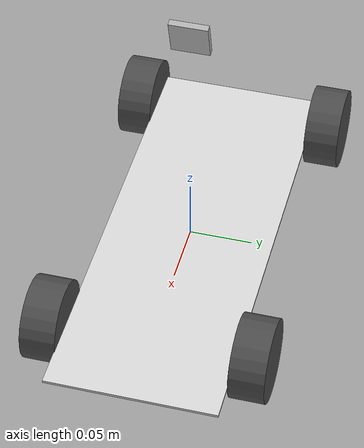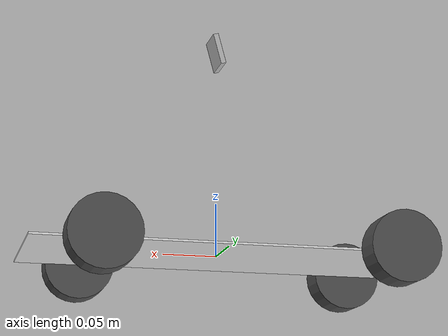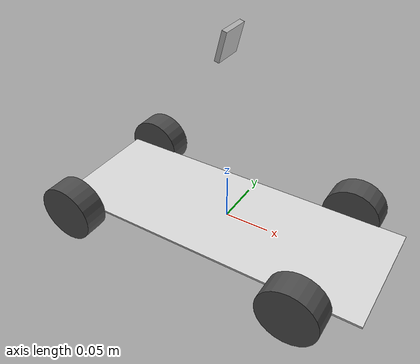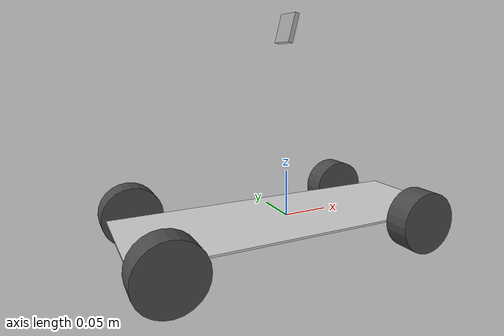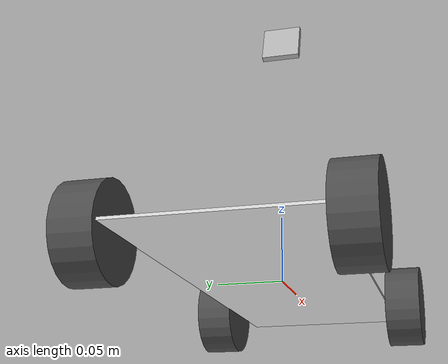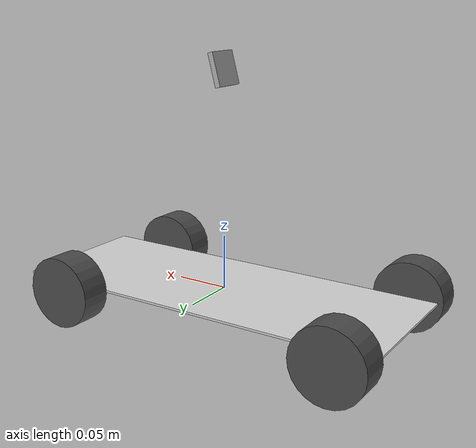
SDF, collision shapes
<?xml version='1.0'?>
<sdf version="1.8">
  <model name='automobile'>
    <include><uri>model://chassis</uri></include>
    <include><uri>model://wheel_left</uri><pose>-0.152 0.081 0 0 0 0</pose><name>wheel_rear_left</name></include>
    <include><uri>model://wheel_right</uri><pose>-0.152 -0.081 0 0 0 0</pose><name>wheel_rear_right</name></include>
    <include><uri>model://steering_column</uri><pose>0.112 0.0725 0 0 0 0</pose><name>steer_left</name></include>
    <include><uri>model://steering_column</uri><pose>0.112 -0.0725 0 0 0 0</pose><name>steer_right</name></include>
    <include><uri>model://wheel_left</uri><pose>0.118 0.081 0 0 0 0</pose><name>wheel_front_left</name></include>
    <include><uri>model://wheel_right</uri><pose>0.118 -0.081 0 0 0 0</pose><name>wheel_front_right</name></include>
    <include><uri>model://camera</uri><pose>0 0 0.2 0 0.2617 0</pose><name>camera</name></include>
    <include><uri>model://car_body</uri><pose>-0.024 0.0 -0.028 0 0.0 0</pose><name>car_body</name></include>

    <joint name='joint_leftrear_rim' type='revolute'>
      <parent>chassis::link</parent>
      <child>wheel_rear_left::link_rim</child>
      <axis><xyz>0 0 -1</xyz><limit><lower>-1.7e+308</lower><upper>1.7e+308</upper></limit></axis>
    </joint>
    <joint name='joint_rightrear_rim' type='revolute'>
      <parent>chassis::link</parent>
      <child>wheel_rear_right::link_rim</child>
      <axis><xyz>0 0 -1</xyz><limit><lower>-1.7e+308</lower><upper>1.7e+308</upper></limit></axis>
    </joint>
    <joint name='joint_leftfront_steer' type='revolute'>
      <parent>chassis::link</parent>
      <child>steer_left::link_steer</child>
      <axis>
        <xyz>0 1 0</xyz>
        <limit>
          <lower>-0.52</lower>
          <upper>0.52</upper>
          <effort>1000.0</effort>
        </limit>
      </axis>
    </joint>
    <joint name='joint_rightfront_steer' type='revolute'>
      <parent>chassis::link</parent>
      <child>steer_right::link_steer</child>
      <axis>
        <xyz>0 1 0</xyz>
        <limit>
          <lower>-0.52</lower>
          <upper>0.52</upper>
          <effort>1000.0</effort>
        </limit>
      </axis>
    </joint>
    <joint name='joint_rightfront_rim' type='revolute'>
      <parent>steer_right::link_steer</parent>
      <child>wheel_front_right::link_rim</child>
      <axis><xyz>0 0 -1</xyz><limit><lower>-1.7e+308</lower><upper>1.7e+308</upper></limit></axis>
    </joint>
    <joint name='joint_leftfront_rim' type='revolute'>
      <parent>steer_left::link_steer</parent>
      <child>wheel_front_left::link_rim</child>
      <axis><xyz>0 0 -1</xyz><limit><lower>-1.7e+308</lower><upper>1.7e+308</upper></limit></axis>
    </joint>
    <joint name='joint_body' type='fixed'><parent>chassis::link</parent><child>car_body::link</child></joint>
    <joint name='joint_camera' type='fixed'><parent>chassis::link</parent><child>camera::link_camera</child></joint>

    <plugin filename="libignition-gazebo-ackermann-steering-system.so" name="ignition::gazebo::systems::AckermannSteering">
      <left_joint>joint_leftrear_rim</left_joint>
      <right_joint>joint_rightrear_rim</right_joint>
      <left_steering_joint>joint_leftfront_steer</left_steering_joint>
      <right_steering_joint>joint_rightfront_steer</right_steering_joint>
      <wheel_separation>0.162</wheel_separation>
      <wheel_base>0.26</wheel_base>
      <wheel_radius>0.0325</wheel_radius>
      <steering_limit>0.5</steering_limit>
      <topic>automobile/command</topic>
    </plugin>
    <plugin filename="libignition-gazebo-imu-system.so"
            name="ignition::gazebo::systems::Imu">
    </plugin>
  </model>
</sdf>

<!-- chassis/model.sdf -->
<sdf version="1.8">
  <model name='chassis'>
    <link name='link'>
      <inertial>
        <mass>0.26244</mass>
        <inertia>
          <ixx>0.00283444</ixx>
          <ixy>0</ixy>
          <ixz>0</ixz>
          <iyy>0.00039867</iyy>
          <iyz>0</iyz>
          <izz>0.00323293</izz>
        </inertia>
        <pose frame=''>0 0 0 0 -0 0</pose>
      </inertial>
      <pose frame=''>0 0 0 0 0 1.5708</pose>
      <gravity>1</gravity>
      <kinematic>0</kinematic>
      <enable_wind>0</enable_wind>
      <visual name='visual'>
        <pose frame=''>0 0 -0.0065 0 0 -1.57079</pose>
        <geometry>
          <mesh>
            <uri>model://chassis/meshes/chassisV5.dae</uri>
            <scale>1 1 1</scale>
          </mesh>
        </geometry>
        <material>
          <lighting>1</lighting>
          <shader type='vertex'>
            <normal_map>__default__</normal_map>
          </shader>
          <ambient>0.6 0.6 0.6 1</ambient>
          <diffuse>0.85 0.85 0.85 1</diffuse>
          <specular>0.6 0.6 0.6 1</specular>
          <emissive>0 0 0 1</emissive>
        </material>
        <transparency>0</transparency>
        <cast_shadows>1</cast_shadows>
      </visual>
      <collision name='collision'>
        <laser_retro>0</laser_retro>
        <max_contacts>10</max_contacts>
        <pose frame=''>0 0 0 0 -0 0</pose>
        <geometry>
          <box>
            <size>0.135 0.36 0.002</size>
          </box>
        </geometry>
        <surface>
          <friction>
            <ode>
              <mu>1</mu>
              <mu2>1</mu2>
              <fdir1>0 0 0</fdir1>
              <slip1>0</slip1>
              <slip2>0</slip2>
            </ode>
            <torsional>
              <coefficient>1</coefficient>
              <patch_radius>0</patch_radius>
              <surface_radius>0</surface_radius>
              <use_patch_radius>1</use_patch_radius>
              <ode>
                <slip>0</slip>
              </ode>
            </torsional>
          </friction>
          <bounce>
            <restitution_coefficient>0</restitution_coefficient>
            <threshold>1e+06</threshold>
          </bounce>
          <contact>
            <collide_without_contact>0</collide_without_contact>
            <collide_without_contact_bitmask>1</collide_without_contact_bitmask>
            <collide_bitmask>1</collide_bitmask>
            <ode>
              <soft_cfm>0</soft_cfm>
              <soft_erp>0.2</soft_erp>
              <kp>1e+13</kp>
              <kd>1</kd>
              <max_vel>0.01</max_vel>
              <min_depth>0</min_depth>
            </ode>
            <bullet>
              <split_impulse>1</split_impulse>
              <split_impulse_penetration_threshold>-0.01</split_impulse_penetration_threshold>
              <soft_cfm>0</soft_cfm>
              <soft_erp>0.2</soft_erp>
              <kp>1e+13</kp>
              <kd>1</kd>
            </bullet>
          </contact>
        </surface>
      </collision>

      <sensor name="imu_sensor" type="imu">
        <always_on>1</always_on>
        <update_rate>100</update_rate>
        <visualize>true</visualize>
        <topic>automobile/IMU</topic>
      </sensor>

    </link>
  </model>
</sdf>

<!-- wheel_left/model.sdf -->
<sdf version="1.8">
  <model name='wheel_left'>

    <link name='link_rim'>
      <inertial>
        <mass>0.038</mass>
        <inertia>
          <ixx>0.00001283</ixx>
          <ixy>0</ixy>
          <ixz>0</ixz>
          <iyy>0.00001283</iyy>
          <iyz>0</iyz>
          <izz>0.00002069</izz>
        </inertia>
        <pose frame=''>0 0 0 0 -0 0</pose>
      </inertial>
      <pose frame=''>0.0 0.0 0 1.5708 0 0</pose>
      <gravity>1</gravity>
      <kinematic>0</kinematic>
      <enable_wind>0</enable_wind>
      <visual name='visual'>
       <pose frame=''>0 0 0 -1.5708 0 0</pose>
       <geometry>
          <mesh>
            <uri>model://wheel_left/meshes/rim.dae</uri>
            <scale>1 1 1</scale>
          </mesh>
        </geometry>
        <material>
          <lighting>1</lighting>
          <shader type='vertex'>
            <normal_map>__default__</normal_map>
          </shader>
          <ambient>0.2 0.2 0.2 1</ambient>
          <diffuse>0.3 0.3 0.3 1</diffuse>
          <specular>0.5 0.5 0.5 1</specular>
          <emissive>0.0 0.0 0.0 0.0</emissive>
        </material>
        <transparency>0</transparency>
        <cast_shadows>1</cast_shadows>
      </visual>
      <collision name='collision'>
        <laser_retro>0</laser_retro>
        <max_contacts>10</max_contacts>
        <pose frame=''>0 0 0 0 -0 0</pose>
        <geometry>
          <cylinder>
            <radius>0.033000</radius>
            <length>0.028000</length>
          </cylinder>
        </geometry>
        <surface>
          <friction>
            <ode>
              <mu>0.7</mu>
              <mu2>0.7</mu2>
              <fdir1>0 0 0</fdir1>
              <slip1>0</slip1>
              <slip2>0</slip2>
            </ode>
            <torsional>
              <coefficient>1</coefficient>
              <patch_radius>0</patch_radius>
              <surface_radius>0</surface_radius>
              <use_patch_radius>1</use_patch_radius>
              <ode>
                <slip>0</slip>
              </ode>
            </torsional>
          </friction>
          <bounce>
            <restitution_coefficient>0</restitution_coefficient>
            <threshold>1e+06</threshold>
          </bounce>
          <contact>
            <collide_without_contact>0</collide_without_contact>
            <collide_without_contact_bitmask>1</collide_without_contact_bitmask>
            <collide_bitmask>1</collide_bitmask>
            <ode>
              <soft_cfm>0</soft_cfm>
              <soft_erp>0.2</soft_erp>
              <kp>1e+07</kp>
              <kd>1</kd>
              <max_vel>0.01</max_vel>
              <min_depth>0</min_depth>
            </ode>
            <bullet>
              <split_impulse>1</split_impulse>
              <split_impulse_penetration_threshold>-0.01</split_impulse_penetration_threshold>
              <soft_cfm>0</soft_cfm>
              <soft_erp>0.2</soft_erp>
              <kp>1e+07</kp>
              <kd>1</kd>
            </bullet>
          </contact>
        </surface>
      </collision>
    </link>

  </model>
</sdf>

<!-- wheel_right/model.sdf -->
<sdf version="1.8">
  <model name='wheel_right'>

    <link name='link_rim'>
      <inertial>
        <mass>0.038</mass>
        <inertia>
          <ixx>0.00001283</ixx>
          <ixy>0</ixy>
          <ixz>0</ixz>
          <iyy>0.00001283</iyy>
          <iyz>0</iyz>
          <izz>0.00002069</izz>
        </inertia>
        <pose frame=''>0 0 0 0 -0 0</pose>
      </inertial>
      <pose frame=''>0.0 0.0 0 1.5708 0 0</pose>
      <gravity>1</gravity>
      <kinematic>0</kinematic>
      <enable_wind>0</enable_wind>
      <visual name='visual'>
       <pose frame=''>0 0 0 -1.5708 0 0</pose>
       <geometry>
          <mesh>
            <uri>model://wheel_right/meshes/rim.dae</uri>
            <scale>1 1 1</scale>
          </mesh>
        </geometry>
        <material>
          <lighting>1</lighting>
          <shader type='vertex'>
            <normal_map>__default__</normal_map>
          </shader>
          <ambient>0.2 0.2 0.2 1</ambient>
          <diffuse>0.3 0.3 0.3 1</diffuse>
          <specular>0.5 0.5 0.5 1</specular>
          <emissive>0.0 0.0 0.0 0.0</emissive>
        </material>
        <transparency>0</transparency>
        <cast_shadows>1</cast_shadows>
      </visual>
      <collision name='collision'>
        <laser_retro>0</laser_retro>
        <max_contacts>10</max_contacts>
        <pose frame=''>0 0 0 0 -0 0</pose>
        <geometry>
          <cylinder>
            <radius>0.033000</radius>
            <length>0.028000</length>
          </cylinder>
        </geometry>
        <surface>
          <friction>
            <ode>
              <mu>0.7</mu>
              <mu2>0.7</mu2>
              <fdir1>0 0 0</fdir1>
              <slip1>0</slip1>
              <slip2>0</slip2>
            </ode>
            <torsional>
              <coefficient>1</coefficient>
              <patch_radius>0</patch_radius>
              <surface_radius>0</surface_radius>
              <use_patch_radius>1</use_patch_radius>
              <ode>
                <slip>0</slip>
              </ode>
            </torsional>
          </friction>
          <bounce>
            <restitution_coefficient>0</restitution_coefficient>
            <threshold>1e+06</threshold>
          </bounce>
          <contact>
            <collide_without_contact>0</collide_without_contact>
            <collide_without_contact_bitmask>1</collide_without_contact_bitmask>
            <collide_bitmask>1</collide_bitmask>
            <ode>
              <soft_cfm>0</soft_cfm>
              <soft_erp>0.2</soft_erp>
              <kp>1e+07</kp>
              <kd>1</kd>
              <max_vel>0.01</max_vel>
              <min_depth>0</min_depth>
            </ode>
            <bullet>
              <split_impulse>1</split_impulse>
              <split_impulse_penetration_threshold>-0.01</split_impulse_penetration_threshold>
              <soft_cfm>0</soft_cfm>
              <soft_erp>0.2</soft_erp>
              <kp>1e+07</kp>
              <kd>1</kd>
            </bullet>
          </contact>
        </surface>
      </collision>
    </link>

  </model>
</sdf>

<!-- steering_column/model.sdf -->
<sdf version="1.8">
  <model name='steering_column'>
    <link name='link_steer'>
      <inertial>
        <mass>0.001</mass>
        <inertia>
          <ixx>0.00014583</ixx>
          <ixy>0</ixy>
          <ixz>0</ixz>
          <iyy>0.00014583</iyy>
          <iyz>0</iyz>
          <izz>0.000125</izz>
        </inertia>
        <pose frame=''>0 0 0 0 -0 0</pose>
      </inertial>
      <pose frame=''>0 0 0 1.5708 0 0</pose>
      <gravity>1</gravity>
      <self_collide>0</self_collide>
      <kinematic>0</kinematic>
      <enable_wind>0</enable_wind>
      <visual name='visual'>
        <pose frame=''>0 0 0 0 -0 0</pose>
        <geometry>
          <cylinder>
            <radius>0.001</radius>
            <length>0.01</length>
          </cylinder>
        </geometry>
        <material>
          <lighting>1</lighting>
          <script>
            <uri>file://media/materials/scripts/gazebo.material</uri>
            <name>Gazebo/Grey</name>
          </script>
          <shader type='vertex'>
            <normal_map>__default__</normal_map>
          </shader>
          <ambient>0.3 0.3 0.3 1</ambient>
          <diffuse>0.7 0.7 0.7 1</diffuse>
          <specular>0.01 0.01 0.01 1</specular>
          <emissive>0 0 0 1</emissive>
        </material>
        <transparency>0</transparency>
        <cast_shadows>1</cast_shadows>
      </visual>
      <collision name='collision'>
        <laser_retro>0</laser_retro>
        <max_contacts>10</max_contacts>
        <pose frame=''>0 0 0 0 -0 0</pose>
        <geometry>
          <cylinder>
            <radius>0.001</radius>
            <length>0.01</length>
          </cylinder>
        </geometry>
        <surface>
          <friction>
            <ode>
              <mu>1</mu>
              <mu2>1</mu2>
              <fdir1>0 0 0</fdir1>
              <slip1>0</slip1>
              <slip2>0</slip2>
            </ode>
            <torsional>
              <coefficient>1</coefficient>
              <patch_radius>0</patch_radius>
              <surface_radius>0</surface_radius>
              <use_patch_radius>1</use_patch_radius>
              <ode>
                <slip>0</slip>
              </ode>
            </torsional>
          </friction>
          <bounce>
            <restitution_coefficient>0</restitution_coefficient>
            <threshold>1e+06</threshold>
          </bounce>
          <contact>
            <collide_without_contact>0</collide_without_contact>
            <collide_without_contact_bitmask>1</collide_without_contact_bitmask>
            <collide_bitmask>1</collide_bitmask>
            <ode>
              <soft_cfm>0</soft_cfm>
              <soft_erp>0.2</soft_erp>
              <kp>1e+13</kp>
              <kd>1</kd>
              <max_vel>0.01</max_vel>
              <min_depth>0</min_depth>
            </ode>
            <bullet>
              <split_impulse>1</split_impulse>
              <split_impulse_penetration_threshold>-0.01</split_impulse_penetration_threshold>
              <soft_cfm>0</soft_cfm>
              <soft_erp>0.2</soft_erp>
              <kp>1e+13</kp>
              <kd>1</kd>
            </bullet>
          </contact>
        </surface>
      </collision>
    </link>

  </model>
</sdf>

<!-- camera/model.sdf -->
<sdf version="1.8">
  <model name='camera'>
    <link name='link_camera'>
      <inertial>
        <mass>0.0052875</mass>
        <inertia>
          <ixx>4.1e-07</ixx>
          <ixy>0</ixy>
          <ixz>0</ixz>
          <iyy>7.9e-07</iyy>
          <iyz>0</iyz>
          <izz>4.1e-07</izz>
        </inertia>
      </inertial>
      <visual name='visual'>
        <geometry>
          <box>
            <size>0.005 0.03 0.03</size>
          </box>
        </geometry>
        <material>
          <ambient>0.3 0.3 0.3 1</ambient>
          <diffuse>0.7 0.7 0.7 1</diffuse>
          <specular>0.01 0.01 0.01 1</specular>
        </material>
      </visual>
      <collision name='collision'>
        <geometry>
          <box>
            <size>0.005 0.03 0.03</size>
          </box>
        </geometry>
      </collision>

      <sensor type="camera" name="camera1">
        <update_rate>30.0</update_rate>
        <visualize>true</visualize>
        <always_on>1</always_on>
        <topic>automobile/camera/image_raw</topic>
        <gz_frame_id>link_camera</gz_frame_id>
        <camera name="head">
          <horizontal_fov>1.085594795</horizontal_fov>
          <image>
            <width>640</width>
            <height>480</height>
            <format>R8G8B8</format>
          </image>
          <clip>
            <near>0.02</near>
            <far>100</far>
          </clip>
        </camera>
      </sensor>
    </link>
  </model>
</sdf>

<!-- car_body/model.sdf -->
<sdf version="1.8">
  <model name='body'>
    <link name='link'>
      <inertial>
        <mass>1</mass>
        <inertia>
          <ixx>0.166667</ixx>
          <ixy>0</ixy>
          <ixz>0</ixz>
          <iyy>0.166667</iyy>
          <iyz>0</iyz>
          <izz>0.166667</izz>
        </inertia>
      </inertial>
      <pose frame=''>0 -0 0 0 -0 0</pose>
      <visual name='visual'>
        <pose frame=''>0 0 0 0 -0 0</pose>
        <geometry>
          <mesh>
            <uri>model://car_body/meshes/CarBody.dae</uri>
            <scale>1 1 1</scale>
          </mesh>
        </geometry>
        <material>
          <diffuse>1 1 1 1</diffuse>
          <specular>0.5 0.5 0.5 1</specular>
          <pbr>
            <metal>
              <albedo_map>model://car_body/meshes/Colors.png</albedo_map>
            </metal>
          </pbr>
        </material>
        <transparency>0</transparency>
        <cast_shadows>1</cast_shadows>
      </visual>
    </link>
    <static>0</static>
    <allow_auto_disable>1</allow_auto_disable>
  </model>
</sdf>
